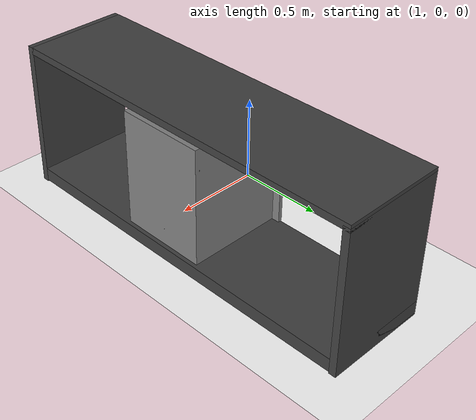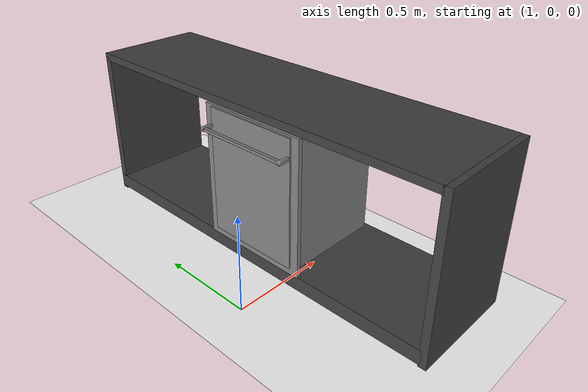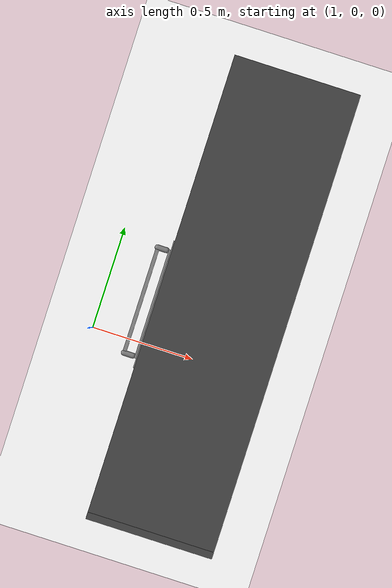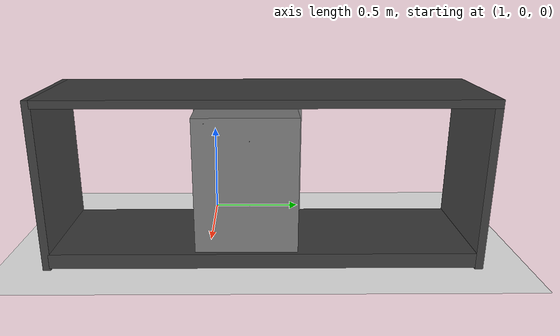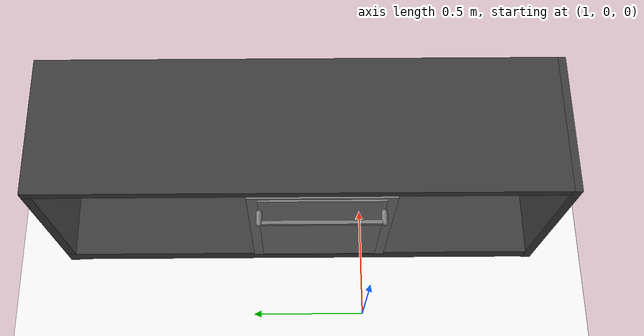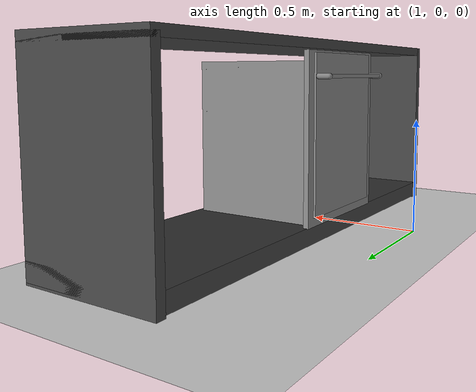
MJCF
<!-- There is a repo with household objects in mujoco : furniture sim -->

<mujoco model="iai_door">
  <!-- inertiafromgeom="true"  -->
  <compiler angle="radian" meshdir="assets" autolimits="true"  balanceinertia="true" />
  <option solver="Newton" integrator="RK4" >
    <!-- energy="disable"  -->
  </option>

  <asset>
    <texture builtin="checker" height="512" name="texplane" rgb1=".2 .3 .4" rgb2=".1 .15 .2" type="2d" width="512" />
    <material name="MatPlane" reflectance="0.05" shininess="0.01" specular="0.01" texrepeat="1 1" texture="texplane" texuniform="true" />
    <material name="black" rgba="0.25 0.25 0.25 1"/>
    <mesh name="SinkArea" file="sink_area_rot.stl"/>
    <mesh name="Sink" file="Sink.obj"/>
    <mesh name="Panel_60" file="Panel_60.obj"/>
    <mesh name="Drawer_60_58" file="Drawer_60_58.obj"/>
    <mesh name="Handle60" file="handle60_rot.stl"/>
    <mesh name="Drawer_80_14" file="Drawer_80_14.obj"/>
    <mesh name="Handle80" file="Handle80.obj"/>
    <mesh name="Drawer_80_29" file="Drawer_80_29.obj"/>
    <mesh name="DishWasher" file="dishwasher.stl"/>
    <mesh name="DishWasherDoor" file="dishwasher_door.stl"/>
  </asset>
   <default>
   <!-- Test the contact class solimp - harder contact setting friction="2 0.05 0.01" -->
        <default class="contact">
          <geom contype="3" condim="4" solimp="0.95 0.95 0.01" solref="0.01 1" />
        </default>
        <default class="viz_dishwasher" >
            <geom group="1"  contype="0" conaffinity="0"/>
        </default>
        <default class="col">
            <geom rgba=".4 .8 .5 1" group="3" contype="1" conaffinity="0"/>
        </default>
   </default>
  <worldbody>
      <light pos="0 0 1000" castshadow="false" />
      <geom name="ground_plane" type="plane" material="MatPlane" size="5 5 10" rgba="1 1 1 1"/>
  </worldbody>

  <worldbody>
    <geom name="sink_area_bottom" pos="1.565 0.3 0.045" quat="0 0 0 1" type="box" size="0.295 1.07 0.038"  material="black"/>
    <geom name="sink_area_top" pos="1.565 0.3 0.825" quat="0 0 0 1" type="box" size="0.295 1.07 0.02"  material="black"/>
    <geom name="sink_area_right" pos="1.565 -0.782 0.395" quat="0 0 0 1" type="box" size="0.295 0.02 0.449"  material="black"/>
    <geom name="sink_area_left" pos="1.565 1.35 0.395" quat="0 0 0 1" type="box" size="0.295 0.02 0.43"  material="black"/>

    <!-- Check urdf and make this dishwash -->
    <!-- Check what does group, contype and conaffinity does -->
  <body name="sink_area_dish_washer_main" pos="1.555 0.2 0.42" quat="0 0 0 1" childclass="viz_dishwasher">
      <geom name="dishwasher" type="mesh" mesh="DishWasher" quat="0.7071 0.7071 0 0" />
      <geom name="dish_top" type="box" pos="-0.005 0 .32" size=".28 .275 .030" class="col"/>
      <geom name="dish_bottom" type="box" pos="-0.005 0 -.394" size=".28 .275 .057" class="col"/>
      <geom name="dish_back" type="box" pos="-0.275 0 -0.05" size=".015 .275 .4" class="col"/>
      <geom name="dish_right" type="box" pos="-0.005 0.245 -0.05" size=".28 .031 .35" class="col"/>
      <geom name="dish_left" type="box" pos="-0.005 -0.245 -0.05" size=".28 .031 .35" class="col"/>

      <body name="sink_area_dish_washer_door"  pos="0.28 0 -0.305" quat="0.7071 -0.707107 0 0">
        <inertial pos="0 0 0" mass="1" diaginertia="1 1 1"/>
        <geom class="contact" name="dishwasher_door" type="mesh" mesh="DishWasherDoor" mass="1" />
        <geom type="box" size="0.01 0.335 0.255" pos="0.01 -0.34 0.0" />
        <joint name="sink_area_dish_washer_door_joint" type="hinge" axis="0 0 1" range="0 1.57" limited="true" damping="0.01" frictionloss="0.01"/>
        <body name="sink_area_dish_washer_door_handle" pos="0.073 -0.58 0" quat="0.707107 -0.707107 0 0">
          <inertial pos="0 0 0" mass="0.5" diaginertia="1 1 1"/>
          <geom type="capsule" size="0.0125 0.022" pos="-0.02 -0.25 0"  quat="0.7071 0 0.7071 0"/>
          <geom type="capsule" size="0.0125 0.022" pos="-0.02 0.25 0" quat="0.7071 0 0.7071 0"/>
          <geom class="contact" type="box" size="0.0082 0.0076 0.25" quat="0.7071 0.7071 0 0"/>
        </body>
          <!-- door col -->
        <geom type="box" size="0.015 0.355 0.3" pos="0.005 -0.33 0.0" class="col" />
          <!-- handle col -->
    </body>
  </body>
  </worldbody>
</mujoco>
